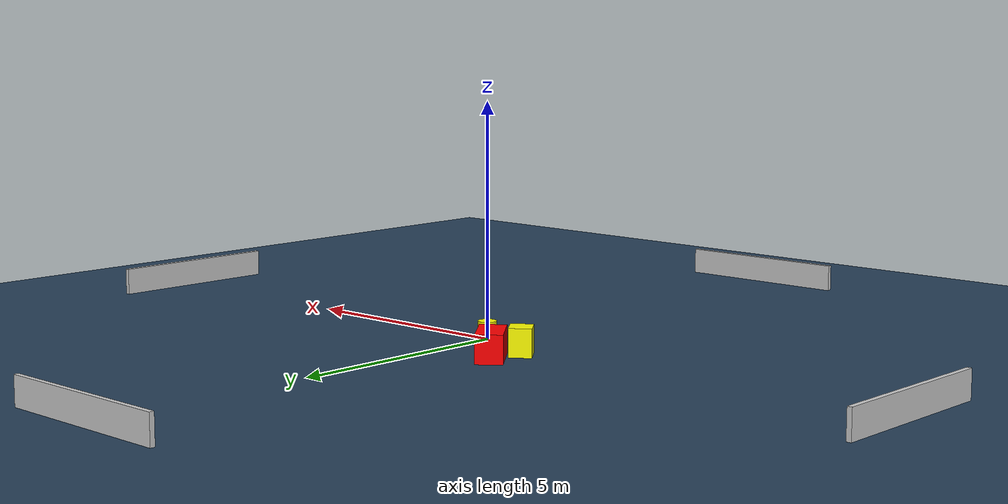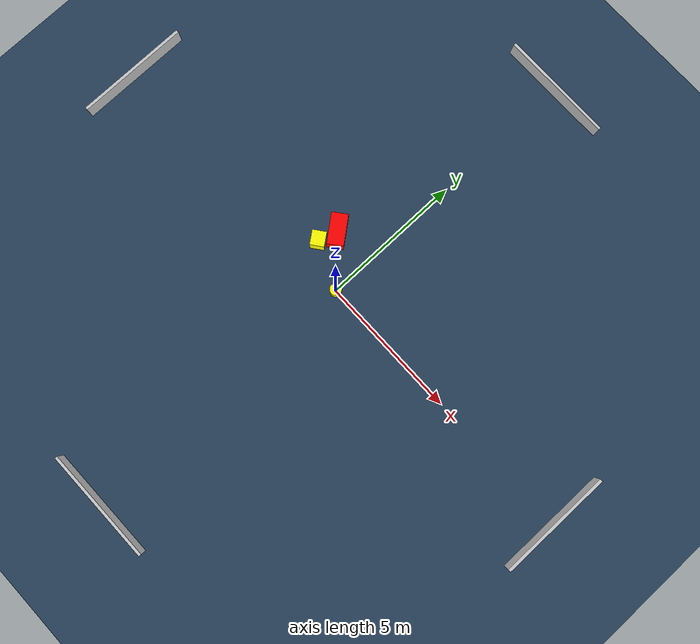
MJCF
<?xml version="1.0" ?>
<mujoco model="generated_environment">
  <option timestep="0.01" integrator="RK4" cone="elliptic"/>
  <default>
    <geom density="1"/>
  </default>
  <asset>
    <texture builtin="gradient" height="3072" name="skybox" rgb1="0.3 0.5 0.7" rgb2="0 0 0" type="skybox" width="512"/>
    <texture builtin="checker" height="300" name="groundplane" rgb1="0.2 0.3 0.4" rgb2="0.1 0.2 0.3" type="2d" width="300"/>
    <material name="groundplane" reflectance="0.2" texrepeat="5 5" texture="groundplane"/>
  </asset>
  <worldbody>
    <light dir="0 0 -1" directional="true" pos="0 0 1.5"/>
    <geom condim="3" friction="0.5 0.005 0.001" material="groundplane" name="floor" pos="0 0 0" size="0 0 0.05" type="plane"/>
    <body name="walls">
      <geom name="wall_1" condim="4" pos="-10.0 0.0 0.3" rgba="0.800000011920929 0.800000011920929 0.800000011920929 1.0" size="0.05 2.0 0.3" type="box"/>
      <geom name="wall_2" condim="4" pos="10.0 0.0 0.3" rgba="0.800000011920929 0.800000011920929 0.800000011920929 1.0" size="0.05 2.0 0.3" type="box"/>
      <geom name="wall_3" condim="4" pos="0.0 -10.0 0.3" rgba="0.800000011920929 0.800000011920929 0.800000011920929 1.0" size="2.0 0.05 0.3" type="box"/>
      <geom name="wall_4" condim="4" pos="0.0 10.0 0.3" rgba="0.800000011920929 0.800000011920929 0.800000011920929 1.0" size="2.0 0.05 0.3" type="box"/>
    </body>
    <body name="robot">
      <joint name="joint_x" type="slide" pos="0 0 0" axis="1 0 0"/>
      <joint name="joint_y" type="slide" pos="0 0 0" axis="0 1 0"/>
      <geom name="robot" type="cylinder" pos="0.0 0.0 0.2" size="0.2 0.2 0.0" mass="5.0" friction="1.0 0.005 0.0001" condim="4" rgba="1.0 1.0 0.0 1.0"/>
    </body>
    <body name="obstacle_1_movable">
      <geom name="obstacle_1_movable" condim="4" pos="-1.5945975595792292 0.7004350635575408 0.3" euler="0 0 217.14092761311136" friction="0.0 0.005 0.001" rgba="1.0 1.0 0.0 1.0" size="0.2393568673192001 0.2549349424941337 0.3" type="box" mass="0.1"/>
      <joint type="free"/>
    </body>
    <body name="obstacle_2_static">
      <geom name="obstacle_2_static" condim="4" pos="-1.3915635288286747 1.3677429630737474 0.3" euler="0 0 128.4554047453366" friction="0.0 0.005 0.001" rgba="1.0 0.0 0.0 1.0" size="0.5362175750116946 0.28269982624819795 0.3" type="box"/>
    </body>
  </worldbody>
  <actuator>
    <motor name="actuator_x" joint="joint_x" gear="1" ctrlrange="-1 1"/>
    <motor name="actuator_y" joint="joint_y" gear="1" ctrlrange="-1 1"/>
  </actuator>
</mujoco>
